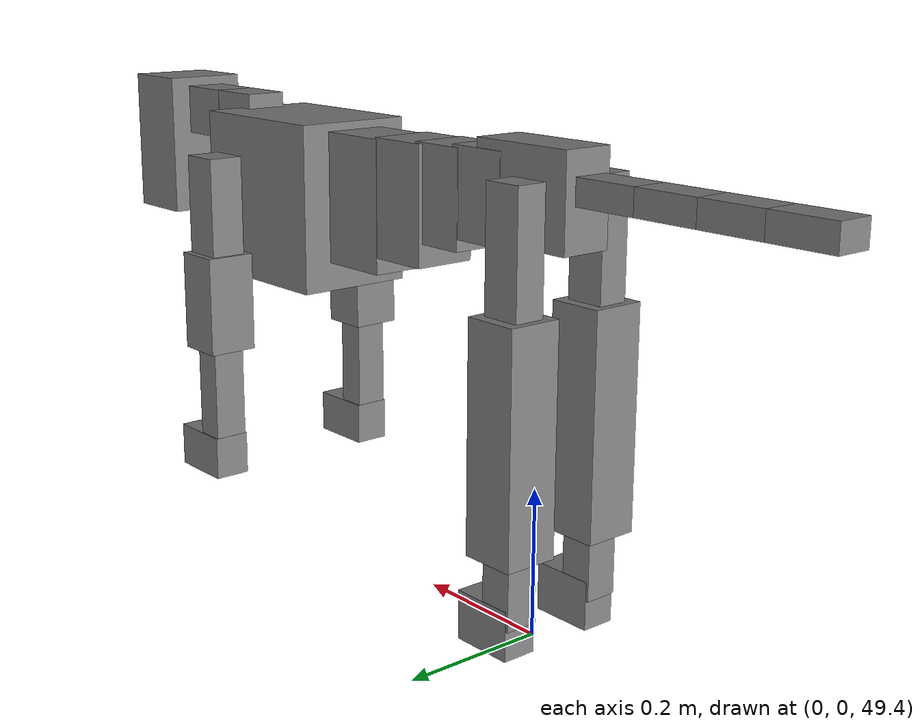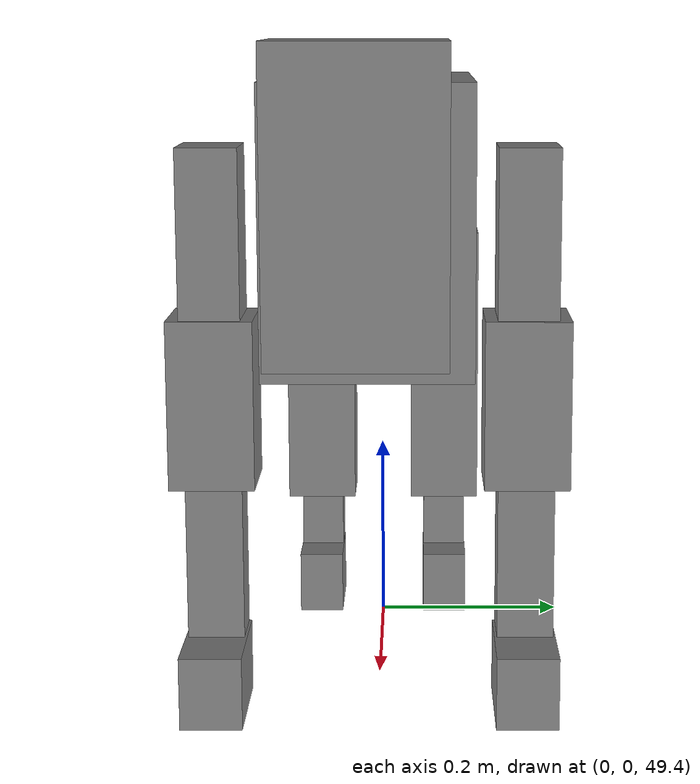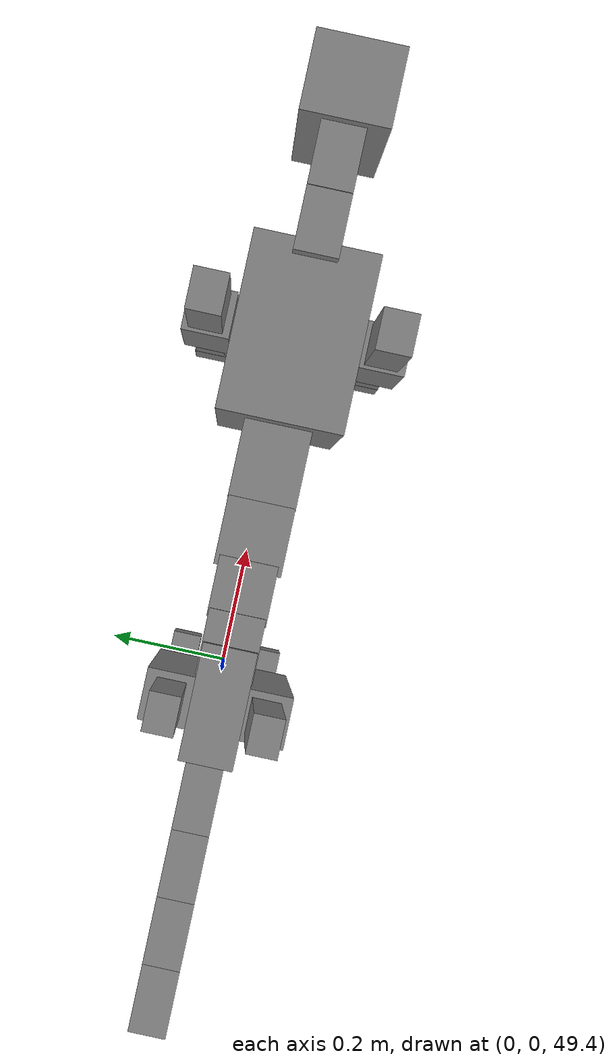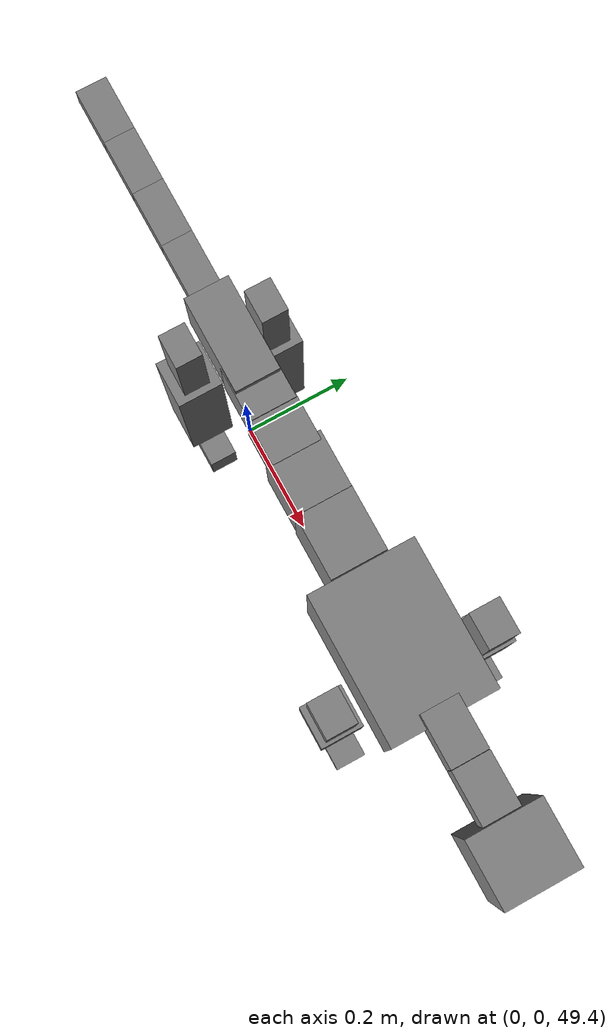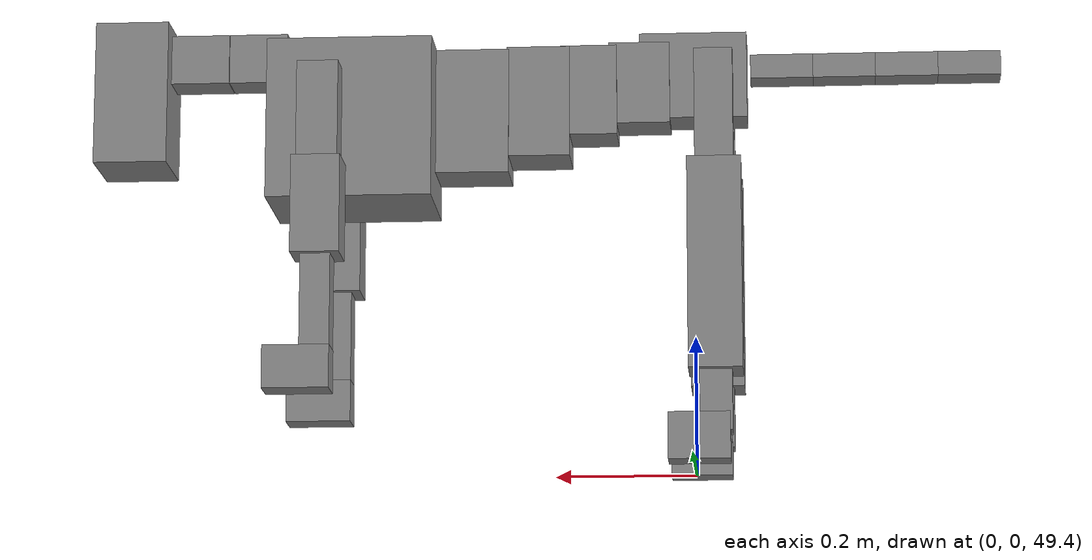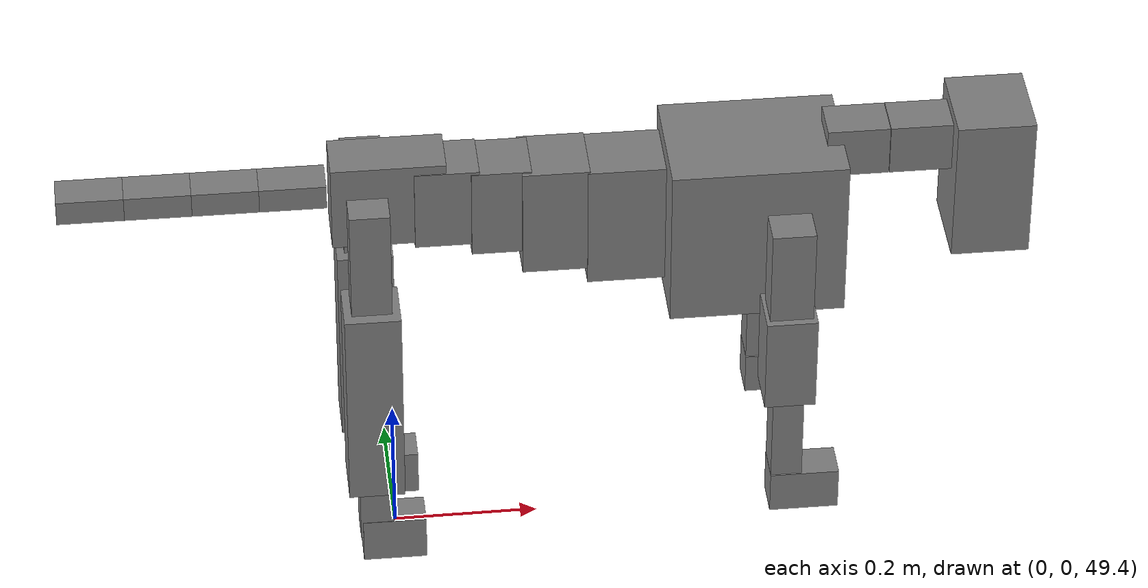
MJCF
<mujoco model="dog">

    <default>
        <joint armature="0.02" stiffness="1" damping="0.2" limited="true"/>
        <geom condim="3" friction="1 0.05 0.05" margin="0.01"/>
        <motor ctrllimited="true" ctrlrange="-1.0 1.0" forcelimited="true" gear="50"/>
    </default>

    <compiler inertiafromgeom="true" angle="radian"/>

    <option timestep="0.016" iterations="50" tolerance="1e-10" solver="Newton" jacobian="dense" cone="pyramidal"/>

    <size nconmax="20000" njmax="60000" nstack="5000000"/>
    <visual>
        <map force="0.1" zfar="30"/>
        <rgba haze="0.15 0.25 0.35 1"/>
        <quality shadowsize="2048"/>
        <global offwidth="800" offheight="800"/>
    </visual>

    <asset>
        <texture type="skybox" builtin="gradient" rgb1="0.3 0.5 0.7" rgb2="0 0 0" width="512" height="512"/>
        <texture name="texplane" type="2d" builtin="checker" rgb1=".2 .3 .4" rgb2=".1 0.15 0.2" width="512" height="512"
                 mark="cross" markrgb=".8 .8 .8"/>
        <texture name="texgeom" type="cube" builtin="flat" mark="cross" width="127" height="1278" rgb1="0.8 0.6 0.4"
                 rgb2="0.8 0.6 0.4" markrgb="1 1 1" random="0.01"/>

        <material name="matplane" reflectance="0.3" texture="texplane" texrepeat="1 1" texuniform="true"/>
        <material name="matgeom" texture="texgeom" texuniform="true" rgba="0.8 0.6 .4 1"/>
    </asset>

    <worldbody>
        <geom name="floor" pos="0 0 0" size="0 0 .25" type="plane" material="matplane" condim="3"/>

        <light directional="false" diffuse=".2 .2 .2" specular="0 0 0" pos="0 0 5" dir="0 0 -1" castshadow="false"/>
        <light mode="targetbodycom" target="torso" directional="false" diffuse=".8 .8 .8" specular="0.3 0.3 0.3"
               pos="0 0 4.0" dir="0 0 -1"/>

        <body name="root" pos="0 0 50">
            <freejoint name="root_1"/>
            <geom type="box" pos="0 0 -0.02" size="0.0774  0.0358  0.063" density="2030"/>

            <body name="spine1" pos="0.054 0 0">
                <joint name="spine1_y" axis="0 1 0" range="0 0.7" limited="true"/>
                <geom type="box" pos="0.02375 0 -0.03" size="0.04375  0.0375  0.05985" density="2030"/>

                <body name="spine2" pos="0.0612 0 0">
                    <joint name="spine2_y" axis="0 1 0" range="-0.15 0.15" limited="true"/>
                    <geom type="box" pos="0.03555  0  -0.04" size="0.04055  0.039  0.06615" density="2030"/>

                    <body name="spine3" pos="0.0730 0 0">
                        <joint name="spine3_y" axis="0 1 0" range="-0.15 0.15" limited="true"/>
                        <geom type="box" pos="0.03555  0  -0.057" size="0.04555  0.0445  0.081" density="2030"/>

                        <body name="spine4" pos="0.0780 0 0">
                            <joint name="spine4_y" axis="0 1 0" range="-0.15 0.15" limited="true"/>
                            <geom type="box" pos="0.05265  0  -0.07" size="0.05265  0.045  0.09135" density="2030"/>

                            <body name="torso" pos="0.1082 0 0">
                                <joint name="torso_y" axis="0 1 0" range="-0.15 0.15" limited="true"/>
                                <geom type="box" pos="0.11925  0  -0.085" size="0.11925  0.085  0.11745"
                                      density="2030"/>

                                <body name="neck1" pos="0.2160  0   0.0180">
                                    <joint name="neck1_y" axis="0 1 0" range="-1.2  -1" limited="true"/>
                                    <geom type="box" pos="0.0423  0  0" size="0.0423  0.03  0.036" density="2325"/>

                                    <body name="neck2" pos="0.0853  0  0">
                                        <joint name="neck2_y" axis="0 1 0" range="0.1  0" limited="true"/>
                                        <geom type="box" pos="0.0423  0  0" size="0.0423  0.03  0.036" density="2325"/>

                                        <body name="head" pos="0.0853  0  0">
                                            <joint name="head_y" axis="0 1 0" range="-0.3  -0.2" limited="true"/>
                                            <geom type="box" pos="0.0531  0  -0.055" size="0.0531  0.06  0.1044"
                                                  density="4030"/>

                                        </body>
                                    </body>
                                </body>

                                <body name="front_shoulder" pos="0.156  0   -0.0480">
                                    <joint name="front_shoulder_y" axis="0 1 0" range="-1 1.5" limited="true"/>
                                    <geom type="box" pos="0 0.13 -0.0567" size="0.0295  0.0252  0.0834" density="1158"/>
                                    <geom type="box" pos="0 -0.13 -0.0567" size="0.0295  0.0252  0.0834"
                                          density="1158"/>

                                    <body name="front_elbow" pos="0  0  -0.1134">
                                        <joint name="front_elbow_y" axis="0 1 0" range="-2 0" limited="true"/>
                                        <geom type="box" pos="0 0.13 -0.0705" size="0.0348  0.0355  0.0705"
                                              density="1081"/>
                                        <geom type="box" pos="0 -0.13 -0.0705" size="0.0348  0.0355  0.0705"
                                              density="1081"/>

                                        <body name="front_wrist" pos="0  0  -0.1410">
                                            <joint name="front_wrist_y" axis="0 1 0" range="-0.2 0" limited="true"/>
                                            <geom type="box" pos="0 0.13 -0.0730" size="0.0213  0.0237  0.0861"
                                                  density="1664"/>
                                            <geom type="box" pos="0 -0.13 -0.0730" size="0.0213  0.0237  0.0861"
                                                  density="1664"/>

                                            <body name="front_finger_end" pos="0  0  -0.1460">
                                                <joint name="front_finger_y" axis="0 1 0" range="-0.4 1"
                                                       limited="true"/>
                                                <geom type="box" pos="0.0258  0.13  -0.0157"
                                                      size="0.0473  0.0258  0.0307" density="1515"/>
                                                <geom type="box" pos="0.0258  -0.13  -0.0157"
                                                      size="0.0473  0.0258  0.0307" density="1515"/>

                                            </body>

                                        </body>
                                    </body>
                                </body>

                            </body>
                        </body>
                    </body>
                </body>
            </body>

            <body name="back_hip" pos="-0.03 0 -0.018">
                <joint name="back_hip_y" axis="0 1 0" range="-1.5 0.3" limited="true"/>
                <geom type="box" pos="0 0.07 -0.0780" size="0.0275  0.0216  0.1008" density="1154"/>
                <geom type="box" pos="0 -0.07 -0.0780" size="0.0275  0.0216  0.1008" density="1154"/>

                <body name="back_knee" pos="0  0  -0.1559">
                    <joint name="back_knee_y" axis="0 1 0" range="0 2.8" limited="true"/>
                    <geom type="box" pos="0 0.07 -0.1371" size="0.0384  0.0378  0.1526" density="1227"/>
                    <geom type="box" pos="0 -0.07 -0.1371" size="0.0384  0.0378  0.1526" density="1227"/>

                    <body name="back_ankle" pos="0  0  -0.2742">
                        <joint name="back_ankle_y" axis="0 1 0" range="-2.2 0" limited="true"/>
                        <geom type="box" pos="0 0.07 -0.0454" size="0.0232  0.0232  0.0566" density="1284"/>
                        <geom type="box" pos="0 -0.07 -0.0454" size="0.0232  0.0232  0.0566" density="1284"/>

                        <body name="back_toe_end" pos="0  0  -0.0908">
                            <joint name="back_toe_y" axis="0 1 0" range="-0.4 1" limited="true"/>
                            <geom type="box" pos="0.0239  0.07  -0.0184" size="0.0438  0.0239  0.0334" density="1515"/>
                            <geom type="box" pos="0.0239  -0.07  -0.0184" size="0.0438  0.0239  0.0334" density="1515"/>

                        </body>
                    </body>
                </body>
            </body>

            <body name="tail1" pos="-0.074 0 -0.006">
                <joint name="tail1_y" axis="0 1 0" range="-0.2 0.2" limited="true"/>
                <geom type="box" pos="-0.0536  0  0" size="0.045  0.025  0.0175" density="1587"/>

                <body name="tail2" pos="-0.09 0 0">
                    <joint name="tail2_y" axis="0 1 0" range="-0.2 0.2" limited="true"/>
                    <geom type="box" pos="-0.0536  0  0" size="0.045  0.025  0.0175" density="1587"/>

                    <body name="tail3" pos="-0.09 0 0">
                        <joint name="tail3_y" axis="0 1 0" range="-0.2 0.2" limited="true"/>
                        <geom type="box" pos="-0.0536  0  0" size="0.045  0.025  0.0175" density="1587"/>

                        <body name="tail4" pos="-0.09 0 0">
                            <joint name="tail4_y" axis="0 1 0" range="-0.2 0.2" limited="true"/>
                            <geom type="box" pos="-0.0536  0  0" size="0.045  0.025  0.0175" density="1587"/>

                        </body>
                    </body>
                </body>
            </body>
        </body>
    </worldbody>

    <actuator>
        <motor joint="spine1_y" forcerange="-150 150     "/>
        <motor joint="spine2_y" forcerange="-150 150     "/>
        <motor joint="spine3_y" forcerange="-150 150     "/>
        <motor joint="spine4_y" forcerange="-150 150     "/>
        <motor joint="torso_y" forcerange="-150 150     "/>
        <motor joint="neck1_y" forcerange="-100 100       "/>
        <motor joint="neck2_y" forcerange="-100 100       "/>
        <motor joint="head_y" forcerange="-150 150       "/>
        <motor joint="front_shoulder_y" forcerange="-122.75 145.11"/>
        <motor joint="front_elbow_y" forcerange="-173.74 184.76"/>
        <motor joint="front_wrist_y" forcerange="-126.89 62.38"/>
        <motor joint="front_finger_y" forcerange="-39.23 58.49"/>
        <motor joint="back_hip_y" forcerange="-266.23 221.32"/>
        <motor joint="back_knee_y" forcerange="-360.15 390.06"/>
        <motor joint="back_angle_y" forcerange="-173.46 98.18"/>
        <motor joint="back_toe_y" forcerange="-42.71 68.59"/>
        <motor joint="tail1_y" forcerange="-50 50     "/>
        <motor joint="tail2_y" forcerange="-50 50     "/>
        <motor joint="tail3_y" forcerange="-50 50     "/>
        <motor joint="tail4_y" forcerange="-50 50     "/>
    </actuator>
</mujoco>
